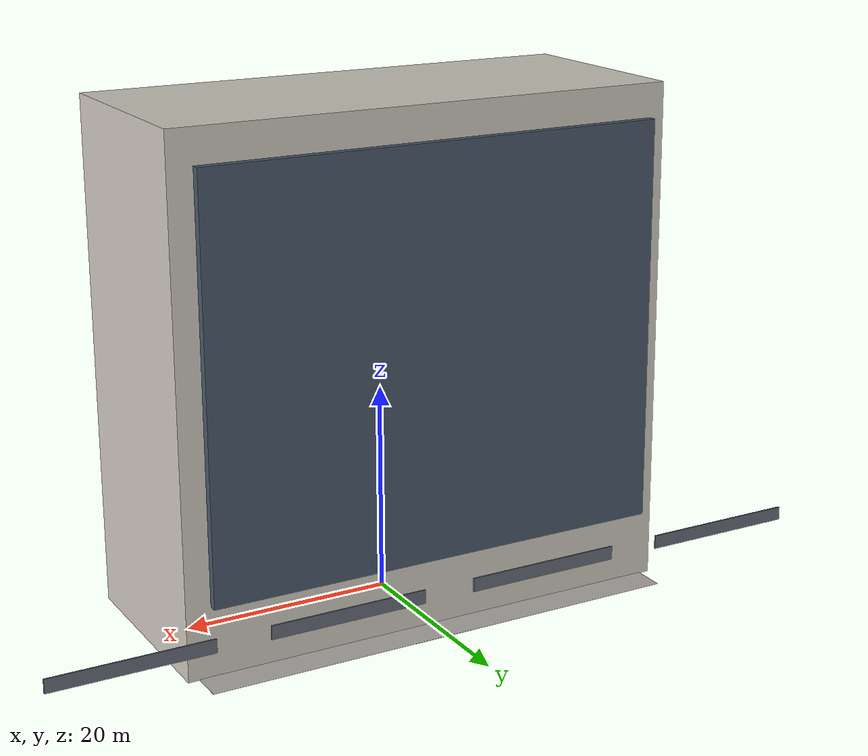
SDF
<?xml version="1.0" ?>
<sdf version="1.8">
  <model name="guandong_west_commercial_block">
    <static>true</static>
    <link name="gd_link">
      <collision name="col"><pose>0 0 24.0 0 0 0</pose><geometry><box><size>48.0 20.0 48.0</size></box></geometry></collision>
      <visual name="main_vis"><pose>0 0 24.0 0 0 0</pose><geometry><box><size>48.0 20.0 48.0</size></box></geometry><material><ambient>0.74 0.72 0.68 1</ambient><diffuse>0.80 0.78 0.74 1</diffuse></material></visual>
      <visual name="arcade_floor"><pose>0 11.5 0.08 0 0 0</pose><geometry><box><size>46.0 3.2 0.02</size></box></geometry><material><ambient>0.62 0.60 0.58 1</ambient><diffuse>0.70 0.68 0.66 1</diffuse></material></visual>
      <visual name="store_sign_0"><pose>-30.0 13.1 4.5 0 0 0</pose><geometry><box><size>15.0 0.15 1.3</size></box></geometry><material><ambient>0.3 0.32 0.35 1</ambient><diffuse>0.38 0.40 0.45 1</diffuse></material></visual>
      <visual name="store_sign_1"><pose>-10.0 13.1 4.5 0 0 0</pose><geometry><box><size>15.0 0.15 1.3</size></box></geometry><material><ambient>0.3 0.32 0.35 1</ambient><diffuse>0.38 0.40 0.45 1</diffuse></material></visual>
      <visual name="store_sign_2"><pose>10.0 13.1 4.5 0 0 0</pose><geometry><box><size>15.0 0.15 1.3</size></box></geometry><material><ambient>0.3 0.32 0.35 1</ambient><diffuse>0.38 0.40 0.45 1</diffuse></material></visual>
      <visual name="store_sign_3"><pose>30.0 13.1 4.5 0 0 0</pose><geometry><box><size>15.0 0.15 1.3</size></box></geometry><material><ambient>0.3 0.32 0.35 1</ambient><diffuse>0.38 0.40 0.45 1</diffuse></material></visual>
      <visual name="balconies"><pose>0 11.2 26.0 0 0 0</pose><geometry><box><size>44.0 0.8 38.0</size></box></geometry><material><ambient>0.22 0.26 0.32 0.9</ambient><diffuse>0.28 0.34 0.40 0.9</diffuse></material></visual>
    </link>
  </model>
</sdf>
